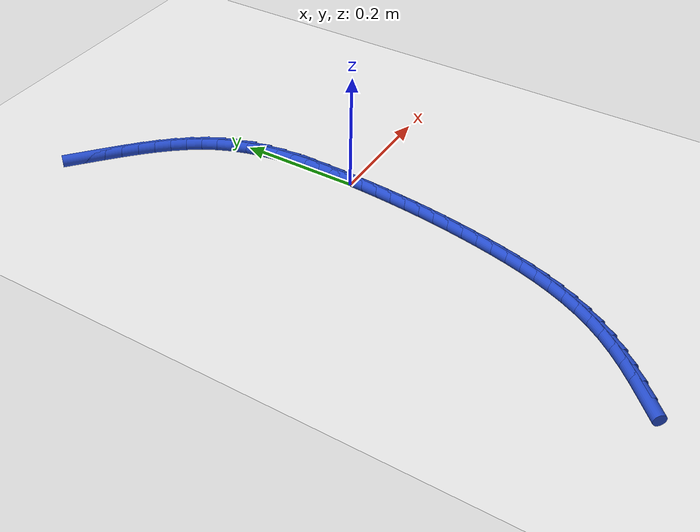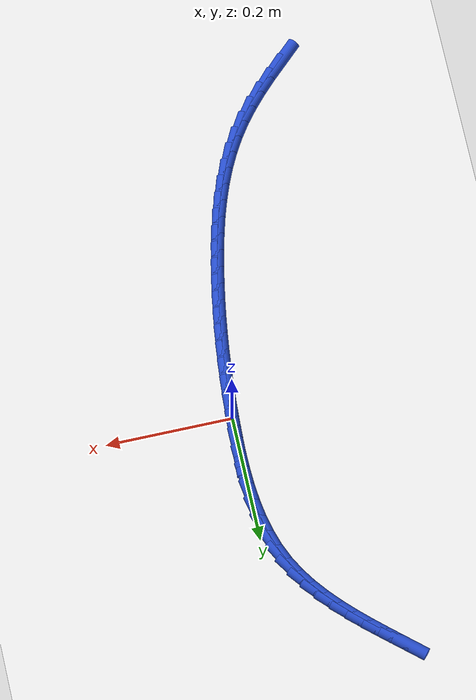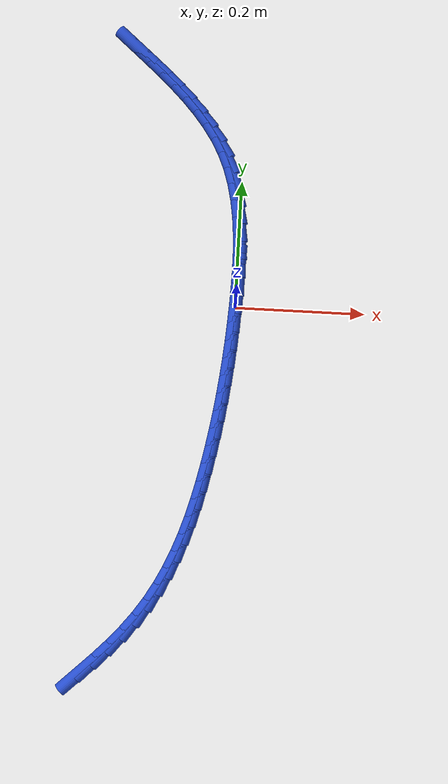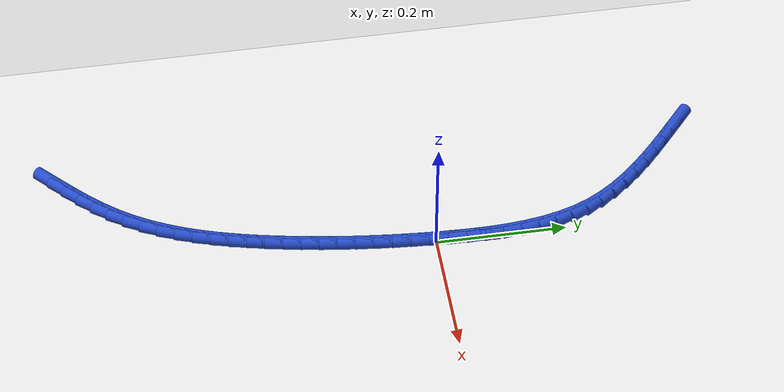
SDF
<sdf version="1.6">
 <world name="default">
  <model name="ground_plane">
   <static>1</static>
   <link name="link">
    <collision name="collision">
     <geometry><plane><normal>0 0 1</normal><size>100 100</size></plane></geometry>
     <surface><friction><ode><mu>100</mu><mu2>50</mu2></ode></friction></surface>
    </collision>
    <visual name="visual">
     <cast_shadows>0</cast_shadows>
     <geometry><plane><normal>0 0 1</normal><size>100 100</size></plane></geometry>
     <material>
      <script><uri>file://media/materials/scripts/gazebo.material</uri><name>Gazebo/WhiteGlow</name></script>
     </material>
    </visual>
   </link>
  </model>
  <model name="line">
   <link name="link_0">
    <pose>2.0599841277224584e-18 -3.469446951953614e-17 0.01 0 1.57 1.5281487675419672</pose>
    <collision name="collision">
     <geometry><cylinder><radius>0.01</radius><length>0.08</length></cylinder></geometry>
    </collision>
    <visual name="visual">
     <material>
      <script><name>Gazebo/Blue</name><uri>file://media/materials/scripts/gazebo.material</uri></script>
     </material>
     <geometry><cylinder><radius>0.01</radius><length>0.08</length></cylinder></geometry>
    </visual>
   </link>
   <link name="link_1">
    <pose>0.0012043785383627386 0.028223145487989088 0.01 0 1.57 1.5499418370346412</pose>
    <collision name="collision">
     <geometry><cylinder><radius>0.01</radius><length>0.08</length></cylinder></geometry>
    </collision>
    <visual name="visual">
     <material>
      <script><name>Gazebo/Blue</name><uri>file://media/materials/scripts/gazebo.material</uri></script>
     </material>
     <geometry><cylinder><radius>0.01</radius><length>0.08</length></cylinder></geometry>
    </visual>
   </link>
   <link name="link_2">
    <pose>0.0017961622781648974 0.056595834212515225 0.01 0 1.57 -1.5616119427103334</pose>
    <collision name="collision">
     <geometry><cylinder><radius>0.01</radius><length>0.08</length></cylinder></geometry>
    </collision>
    <visual name="visual">
     <material>
      <script><name>Gazebo/Blue</name><uri>file://media/materials/scripts/gazebo.material</uri></script>
     </material>
     <geometry><cylinder><radius>0.01</radius><length>0.08</length></cylinder></geometry>
    </visual>
   </link>
   <link name="link_3">
    <pose>0.001535870714194465 0.08493570357654158 0.01 0 1.57 -1.5227670737437309</pose>
    <collision name="collision">
     <geometry><cylinder><radius>0.01</radius><length>0.08</length></cylinder></geometry>
    </collision>
    <visual name="visual">
     <material>
      <script><name>Gazebo/Blue</name><uri>file://media/materials/scripts/gazebo.material</uri></script>
     </material>
     <geometry><cylinder><radius>0.01</radius><length>0.08</length></cylinder></geometry>
    </visual>
   </link>
   <link name="link_4">
    <pose>0.00018402334123942925 0.11306039098303124 0.01 0 1.57 -1.4743364225109419</pose>
    <collision name="collision">
     <geometry><cylinder><radius>0.01</radius><length>0.08</length></cylinder></geometry>
    </collision>
    <visual name="visual">
     <material>
      <script><name>Gazebo/Blue</name><uri>file://media/materials/scripts/gazebo.material</uri></script>
     </material>
     <geometry><cylinder><radius>0.01</radius><length>0.08</length></cylinder></geometry>
    </visual>
   </link>
   <link name="link_5">
    <pose>-0.0024988603459122224 0.14078753383494746 0.01 0 1.57 -1.4153808807474224</pose>
    <collision name="collision">
     <geometry><cylinder><radius>0.01</radius><length>0.08</length></cylinder></geometry>
    </collision>
    <visual name="visual">
     <material>
      <script><name>Gazebo/Blue</name><uri>file://media/materials/scripts/gazebo.material</uri></script>
     </material>
     <geometry><cylinder><radius>0.01</radius><length>0.08</length></cylinder></geometry>
    </visual>
   </link>
   <link name="link_6">
    <pose>-0.006752260852472505 0.16793476953525333 0.01 0 1.57 -1.3449131231583356</pose>
    <collision name="collision">
     <geometry><cylinder><radius>0.01</radius><length>0.08</length></cylinder></geometry>
    </collision>
    <visual name="visual">
     <material>
      <script><name>Gazebo/Blue</name><uri>file://media/materials/scripts/gazebo.material</uri></script>
     </material>
     <geometry><cylinder><radius>0.01</radius><length>0.08</length></cylinder></geometry>
    </visual>
   </link>
   <link name="link_7">
    <pose>-0.012815658683653426 0.194319735486912 0.01 0 1.57 -1.2620931907068431</pose>
    <collision name="collision">
     <geometry><cylinder><radius>0.01</radius><length>0.08</length></cylinder></geometry>
    </collision>
    <visual name="visual">
     <material>
      <script><name>Gazebo/Blue</name><uri>file://media/materials/scripts/gazebo.material</uri></script>
     </material>
     <geometry><cylinder><radius>0.01</radius><length>0.08</length></cylinder></geometry>
    </visual>
   </link>
   <link name="link_8">
    <pose>-0.020928534344667002 0.2197600690928867 0.01 0 1.57 -1.1665671507916342</pose>
    <collision name="collision">
     <geometry><cylinder><radius>0.01</radius><length>0.08</length></cylinder></geometry>
    </collision>
    <visual name="visual">
     <material>
      <script><name>Gazebo/Blue</name><uri>file://media/materials/scripts/gazebo.material</uri></script>
     </material>
     <geometry><cylinder><radius>0.01</radius><length>0.08</length></cylinder></geometry>
    </visual>
   </link>
   <link name="link_9">
    <pose>-0.031329664178705995 0.24407385525869985 0.01 0 1.57 -1.0655260045382065</pose>
    <collision name="collision">
     <geometry><cylinder><radius>0.01</radius><length>0.08</length></cylinder></geometry>
    </collision>
    <visual name="visual">
     <material>
      <script><name>Gazebo/Blue</name><uri>file://media/materials/scripts/gazebo.material</uri></script>
     </material>
     <geometry><cylinder><radius>0.01</radius><length>0.08</length></cylinder></geometry>
    </visual>
   </link>
   <link name="link_10">
    <pose>-0.044108063827259646 0.26717435343132306 0.01 0 1.57 -0.975439242324673</pose>
    <collision name="collision">
     <geometry><cylinder><radius>0.01</radius><length>0.08</length></cylinder></geometry>
    </collision>
    <visual name="visual">
     <material>
      <script><name>Gazebo/Blue</name><uri>file://media/materials/scripts/gazebo.material</uri></script>
     </material>
     <geometry><cylinder><radius>0.01</radius><length>0.08</length></cylinder></geometry>
    </visual>
   </link>
   <link name="link_11">
    <pose>-0.05901837780581074 0.28918731951527366 0.01 0 1.57 -0.899314491709051</pose>
    <collision name="collision">
     <geometry><cylinder><radius>0.01</radius><length>0.08</length></cylinder></geometry>
    </collision>
    <visual name="visual">
     <material>
      <script><name>Gazebo/Blue</name><uri>file://media/materials/scripts/gazebo.material</uri></script>
     </material>
     <geometry><cylinder><radius>0.01</radius><length>0.08</length></cylinder></geometry>
    </visual>
   </link>
   <link name="link_12">
    <pose>-0.07576997154769693 0.31026728476021237 0.01 0 1.57 -0.8371411409186568</pose>
    <collision name="collision">
     <geometry><cylinder><radius>0.01</radius><length>0.08</length></cylinder></geometry>
    </collision>
    <visual name="visual">
     <material>
      <script><name>Gazebo/Blue</name><uri>file://media/materials/scripts/gazebo.material</uri></script>
     </material>
     <geometry><cylinder><radius>0.01</radius><length>0.08</length></cylinder></geometry>
    </visual>
   </link>
   <link name="link_13">
    <pose>-0.09407221048625582 0.33056878041579957 0.01 0 1.57 -0.7883366950720202</pose>
    <collision name="collision">
     <geometry><cylinder><radius>0.01</radius><length>0.08</length></cylinder></geometry>
    </collision>
    <visual name="visual">
     <material>
      <script><name>Gazebo/Blue</name><uri>file://media/materials/scripts/gazebo.material</uri></script>
     </material>
     <geometry><cylinder><radius>0.01</radius><length>0.08</length></cylinder></geometry>
    </visual>
   </link>
   <link name="link_14">
    <pose>-0.11363446005482505 0.350246337731696 0.01 0 1.57 -0.7521069230096045</pose>
    <collision name="collision">
     <geometry><cylinder><radius>0.01</radius><length>0.08</length></cylinder></geometry>
    </collision>
    <visual name="visual">
     <material>
      <script><name>Gazebo/Blue</name><uri>file://media/materials/scripts/gazebo.material</uri></script>
     </material>
     <geometry><cylinder><radius>0.01</radius><length>0.08</length></cylinder></geometry>
    </visual>
   </link>
   <link name="link_15">
    <pose>-0.1341660856867423 0.369454487957562 0.01 0 1.57 -0.7276847124320796</pose>
    <collision name="collision">
     <geometry><cylinder><radius>0.01</radius><length>0.08</length></cylinder></geometry>
    </collision>
    <visual name="visual">
     <material>
      <script><name>Gazebo/Blue</name><uri>file://media/materials/scripts/gazebo.material</uri></script>
     </material>
     <geometry><cylinder><radius>0.01</radius><length>0.08</length></cylinder></geometry>
    </visual>
   </link>
   <link name="link_16">
    <pose>-0.15537645281534512 0.3883477623430582 0.01 0 1.57 -0.714467407319368</pose>
    <collision name="collision">
     <geometry><cylinder><radius>0.01</radius><length>0.08</length></cylinder></geometry>
    </collision>
    <visual name="visual">
     <material>
      <script><name>Gazebo/Blue</name><uri>file://media/materials/scripts/gazebo.material</uri></script>
     </material>
     <geometry><cylinder><radius>0.01</radius><length>0.08</length></cylinder></geometry>
    </visual>
   </link>
   <link name="link_17">
    <pose>-0.17697492687397123 0.4070806921378452 0.01 0 1.57 -0.7120858264526755</pose>
    <collision name="collision">
     <geometry><cylinder><radius>0.01</radius><length>0.08</length></cylinder></geometry>
    </collision>
    <visual name="visual">
     <material>
      <script><name>Gazebo/Blue</name><uri>file://media/materials/scripts/gazebo.material</uri></script>
     </material>
     <geometry><cylinder><radius>0.01</radius><length>0.08</length></cylinder></geometry>
    </visual>
   </link>
   <link name="link_238">
    <pose>-0.1992345974447253 -0.5577708010944165 0.01 0 1.57 0.7574208362696273</pose>
    <collision name="collision">
     <geometry><cylinder><radius>0.01</radius><length>0.08</length></cylinder></geometry>
    </collision>
    <visual name="visual">
     <material>
      <script><name>Gazebo/Blue</name><uri>file://media/materials/scripts/gazebo.material</uri></script>
     </material>
     <geometry><cylinder><radius>0.01</radius><length>0.08</length></cylinder></geometry>
    </visual>
   </link>
   <link name="link_239">
    <pose>-0.17801260755102388 -0.5377042555464332 0.01 0 1.57 0.793212975454921</pose>
    <collision name="collision">
     <geometry><cylinder><radius>0.01</radius><length>0.08</length></cylinder></geometry>
    </collision>
    <visual name="visual">
     <material>
      <script><name>Gazebo/Blue</name><uri>file://media/materials/scripts/gazebo.material</uri></script>
     </material>
     <geometry><cylinder><radius>0.01</radius><length>0.08</length></cylinder></geometry>
    </visual>
   </link>
   <link name="link_240">
    <pose>-0.1577290760660197 -0.5171011965363602 0.01 0 1.57 0.8398280162992813</pose>
    <collision name="collision">
     <geometry><cylinder><radius>0.01</radius><length>0.08</length></cylinder></geometry>
    </collision>
    <visual name="visual">
     <material>
      <script><name>Gazebo/Blue</name><uri>file://media/materials/scripts/gazebo.material</uri></script>
     </material>
     <geometry><cylinder><radius>0.01</radius><length>0.08</length></cylinder></geometry>
    </visual>
   </link>
   <link name="link_241">
    <pose>-0.13866114660904266 -0.4958357571993912 0.01 0 1.57 0.8979318215782209</pose>
    <collision name="collision">
     <geometry><cylinder><radius>0.01</radius><length>0.08</length></cylinder></geometry>
    </collision>
    <visual name="visual">
     <material>
      <script><name>Gazebo/Blue</name><uri>file://media/materials/scripts/gazebo.material</uri></script>
     </material>
     <geometry><cylinder><radius>0.01</radius><length>0.08</length></cylinder></geometry>
    </visual>
   </link>
   <link name="link_242">
    <pose>-0.12108596279942299 -0.47378207067072003 0.01 0 1.57 0.9674310964370864</pose>
    <collision name="collision">
     <geometry><cylinder><radius>0.01</radius><length>0.08</length></cylinder></geometry>
    </collision>
    <visual name="visual">
     <material>
      <script><name>Gazebo/Blue</name><uri>file://media/materials/scripts/gazebo.material</uri></script>
     </material>
     <geometry><cylinder><radius>0.01</radius><length>0.08</length></cylinder></geometry>
    </visual>
   </link>
   <link name="link_243">
    <pose>-0.10526512503645473 -0.450822992036373 0.01 0 1.57 1.038860933478793</pose>
    <collision name="collision">
     <geometry><cylinder><radius>0.01</radius><length>0.08</length></cylinder></geometry>
    </collision>
    <visual name="visual">
     <material>
      <script><name>Gazebo/Blue</name><uri>file://media/materials/scripts/gazebo.material</uri></script>
     </material>
     <geometry><cylinder><radius>0.01</radius><length>0.08</length></cylinder></geometry>
    </visual>
   </link>
   <link name="link_244">
    <pose>-0.09122812288906658 -0.42697162347695894 0.01 0 1.57 1.1043299070634693</pose>
    <collision name="collision">
     <geometry><cylinder><radius>0.01</radius><length>0.08</length></cylinder></geometry>
    </collision>
    <visual name="visual">
     <material>
      <script><name>Gazebo/Blue</name><uri>file://media/materials/scripts/gazebo.material</uri></script>
     </material>
     <geometry><cylinder><radius>0.01</radius><length>0.08</length></cylinder></geometry>
    </visual>
   </link>
   <link name="link_245">
    <pose>-0.07882600243954394 -0.4023411992765559 0.01 0 1.57 1.1632148240730193</pose>
    <collision name="collision">
     <geometry><cylinder><radius>0.01</radius><length>0.08</length></cylinder></geometry>
    </collision>
    <visual name="visual">
     <material>
      <script><name>Gazebo/Blue</name><uri>file://media/materials/scripts/gazebo.material</uri></script>
     </material>
     <geometry><cylinder><radius>0.01</radius><length>0.08</length></cylinder></geometry>
    </visual>
   </link>
   <link name="link_246">
    <pose>-0.06790523318862574 -0.37704752183055834 0.01 0 1.57 1.2153367714332532</pose>
    <collision name="collision">
     <geometry><cylinder><radius>0.01</radius><length>0.08</length></cylinder></geometry>
    </collision>
    <visual name="visual">
     <material>
      <script><name>Gazebo/Blue</name><uri>file://media/materials/scripts/gazebo.material</uri></script>
     </material>
     <geometry><cylinder><radius>0.01</radius><length>0.08</length></cylinder></geometry>
    </visual>
   </link>
   <link name="link_247">
    <pose>-0.05831228463704988 -0.35120639353435823 0.01 0 1.57 1.260700870438046</pose>
    <collision name="collision">
     <geometry><cylinder><radius>0.01</radius><length>0.08</length></cylinder></geometry>
    </collision>
    <visual name="visual">
     <material>
      <script><name>Gazebo/Blue</name><uri>file://media/materials/scripts/gazebo.material</uri></script>
     </material>
     <geometry><cylinder><radius>0.01</radius><length>0.08</length></cylinder></geometry>
    </visual>
   </link>
   <link name="link_248">
    <pose>-0.04989362628555465 -0.32493361678334876 0.01 0 1.57 1.2994245964217706</pose>
    <collision name="collision">
     <geometry><cylinder><radius>0.01</radius><length>0.08</length></cylinder></geometry>
    </collision>
    <visual name="visual">
     <material>
      <script><name>Gazebo/Blue</name><uri>file://media/materials/scripts/gazebo.material</uri></script>
     </material>
     <geometry><cylinder><radius>0.01</radius><length>0.08</length></cylinder></geometry>
    </visual>
   </link>
   <link name="link_249">
    <pose>-0.042495727634878376 -0.29834499397292286 0.01 0 1.57 1.3316757724344939</pose>
    <collision name="collision">
     <geometry><cylinder><radius>0.01</radius><length>0.08</length></cylinder></geometry>
    </collision>
    <visual name="visual">
     <material>
      <script><name>Gazebo/Blue</name><uri>file://media/materials/scripts/gazebo.material</uri></script>
     </material>
     <geometry><cylinder><radius>0.01</radius><length>0.08</length></cylinder></geometry>
    </visual>
   </link>
   <link name="link_250">
    <pose>-0.035965058185759305 -0.27155632749847347 0.01 0 1.57 1.357622919717826</pose>
    <collision name="collision">
     <geometry><cylinder><radius>0.01</radius><length>0.08</length></cylinder></geometry>
    </collision>
    <visual name="visual">
     <material>
      <script><name>Gazebo/Blue</name><uri>file://media/materials/scripts/gazebo.material</uri></script>
     </material>
     <geometry><cylinder><radius>0.01</radius><length>0.08</length></cylinder></geometry>
    </visual>
   </link>
   <link name="link_251">
    <pose>-0.030148087438935746 -0.24468341975539354 0.01 0 1.57 1.3779087301964108</pose>
    <collision name="collision">
     <geometry><cylinder><radius>0.01</radius><length>0.08</length></cylinder></geometry>
    </collision>
    <visual name="visual">
     <material>
      <script><name>Gazebo/Blue</name><uri>file://media/materials/scripts/gazebo.material</uri></script>
     </material>
     <geometry><cylinder><radius>0.01</radius><length>0.08</length></cylinder></geometry>
    </visual>
   </link>
   <link name="link_252">
    <pose>-0.02490288064260782 -0.21782842977400912 0.01 0 1.57 1.3963394762551684</pose>
    <collision name="collision">
     <geometry><cylinder><radius>0.01</radius><length>0.08</length></cylinder></geometry>
    </collision>
    <visual name="visual">
     <material>
      <script><name>Gazebo/Blue</name><uri>file://media/materials/scripts/gazebo.material</uri></script>
     </material>
     <geometry><cylinder><radius>0.01</radius><length>0.08</length></cylinder></geometry>
    </visual>
   </link>
   <link name="link_253">
    <pose>-0.02017313382528478 -0.19099276482194585 0.01 0 1.57 1.414514991484306</pose>
    <collision name="collision">
     <geometry><cylinder><radius>0.01</radius><length>0.08</length></cylinder></geometry>
    </collision>
    <visual name="visual">
     <material>
      <script><name>Gazebo/Blue</name><uri>file://media/materials/scripts/gazebo.material</uri></script>
     </material>
     <geometry><cylinder><radius>0.01</radius><length>0.08</length></cylinder></geometry>
    </visual>
   </link>
   <link name="link_254">
    <pose>-0.015940895985421134 -0.16413270669543692 0.01 0 1.57 1.432336870787314</pose>
    <collision name="collision">
     <geometry><cylinder><radius>0.01</radius><length>0.08</length></cylinder></geometry>
    </collision>
    <visual name="visual">
     <material>
      <script><name>Gazebo/Blue</name><uri>file://media/materials/scripts/gazebo.material</uri></script>
     </material>
     <geometry><cylinder><radius>0.01</radius><length>0.08</length></cylinder></geometry>
    </visual>
   </link>
   <link name="link_255">
    <pose>-0.012188396453858202 -0.137204325014607 0.01 0 1.57 1.4497032948771873</pose>
    <collision name="collision">
     <geometry><cylinder><radius>0.01</radius><length>0.08</length></cylinder></geometry>
    </collision>
    <visual name="visual">
     <material>
      <script><name>Gazebo/Blue</name><uri>file://media/materials/scripts/gazebo.material</uri></script>
     </material>
     <geometry><cylinder><radius>0.01</radius><length>0.08</length></cylinder></geometry>
    </visual>
   </link>
   <link name="link_256">
    <pose>-0.008897864561437291 -0.11016368939958056 0.01 0 1.57 1.4665190376751802</pose>
    <collision name="collision">
     <geometry><cylinder><radius>0.01</radius><length>0.08</length></cylinder></geometry>
    </collision>
    <visual name="visual">
     <material>
      <script><name>Gazebo/Blue</name><uri>file://media/materials/scripts/gazebo.material</uri></script>
     </material>
     <geometry><cylinder><radius>0.01</radius><length>0.08</length></cylinder></geometry>
    </visual>
   </link>
   <link name="link_257">
    <pose>-0.006051529638999708 -0.08296686947048214 0.01 0 1.57 1.482697247529952</pose>
    <collision name="collision">
     <geometry><cylinder><radius>0.01</radius><length>0.08</length></cylinder></geometry>
    </collision>
    <visual name="visual">
     <material>
      <script><name>Gazebo/Blue</name><uri>file://media/materials/scripts/gazebo.material</uri></script>
     </material>
     <geometry><cylinder><radius>0.01</radius><length>0.08</length></cylinder></geometry>
    </visual>
   </link>
   <link name="link_258">
    <pose>-0.0036316210173867624 -0.055569934847436254 0.01 0 1.57 1.498160888179668</pose>
    <collision name="collision">
     <geometry><cylinder><radius>0.01</radius><length>0.08</length></cylinder></geometry>
    </collision>
    <visual name="visual">
     <material>
      <script><name>Gazebo/Blue</name><uri>file://media/materials/scripts/gazebo.material</uri></script>
     </material>
     <geometry><cylinder><radius>0.01</radius><length>0.08</length></cylinder></geometry>
    </visual>
   </link>
   <link name="link_259">
    <pose>-0.001620368027439761 -0.027928955150567442 0.01 0 1.57 1.5128437964297283</pose>
    <collision name="collision">
     <geometry><cylinder><radius>0.01</radius><length>0.08</length></cylinder></geometry>
    </collision>
    <visual name="visual">
     <material>
      <script><name>Gazebo/Blue</name><uri>file://media/materials/scripts/gazebo.material</uri></script>
     </material>
     <geometry><cylinder><radius>0.01</radius><length>0.08</length></cylinder></geometry>
    </visual>
   </link>
   <link name="link_260">
    <pose>-1.4040418133687282e-17 -2.42861286636753e-16 0.01 0 1.57 1.526691340402046</pose>
    <collision name="collision">
     <geometry><cylinder><radius>0.01</radius><length>0.08</length></cylinder></geometry>
    </collision>
    <visual name="visual">
     <material>
      <script><name>Gazebo/Blue</name><uri>file://media/materials/scripts/gazebo.material</uri></script>
     </material>
     <geometry><cylinder><radius>0.01</radius><length>0.08</length></cylinder></geometry>
    </visual>
   </link>
   <link name="link_261">
    <pose>0.001247253734091172 0.028260860984140816 0.01 0 1.57 1.5396606874124124</pose>
    <collision name="collision">
     <geometry><cylinder><radius>0.01</radius><length>0.08</length></cylinder></geometry>
    </collision>
    <visual name="visual">
     <material>
      <script><name>Gazebo/Blue</name><uri>file://media/materials/scripts/gazebo.material</uri></script>
     </material>
     <geometry><cylinder><radius>0.01</radius><length>0.08</length></cylinder></geometry>
    </visual>
   </link>
   <link name="link_262">
    <pose>0.0021391638439924856 0.0568975581817312 0.01 0 1.57 1.5332172662532515</pose>
    <collision name="collision">
     <geometry><cylinder><radius>0.01</radius><length>0.08</length></cylinder></geometry>
    </collision>
    <visual name="visual">
     <material>
      <script><name>Gazebo/Blue</name><uri>file://media/materials/scripts/gazebo.material</uri></script>
     </material>
     <geometry><cylinder><radius>0.01</radius><length>0.08</length></cylinder></geometry>
    </visual>
   </link>
  </model>
 </world>
</sdf>
